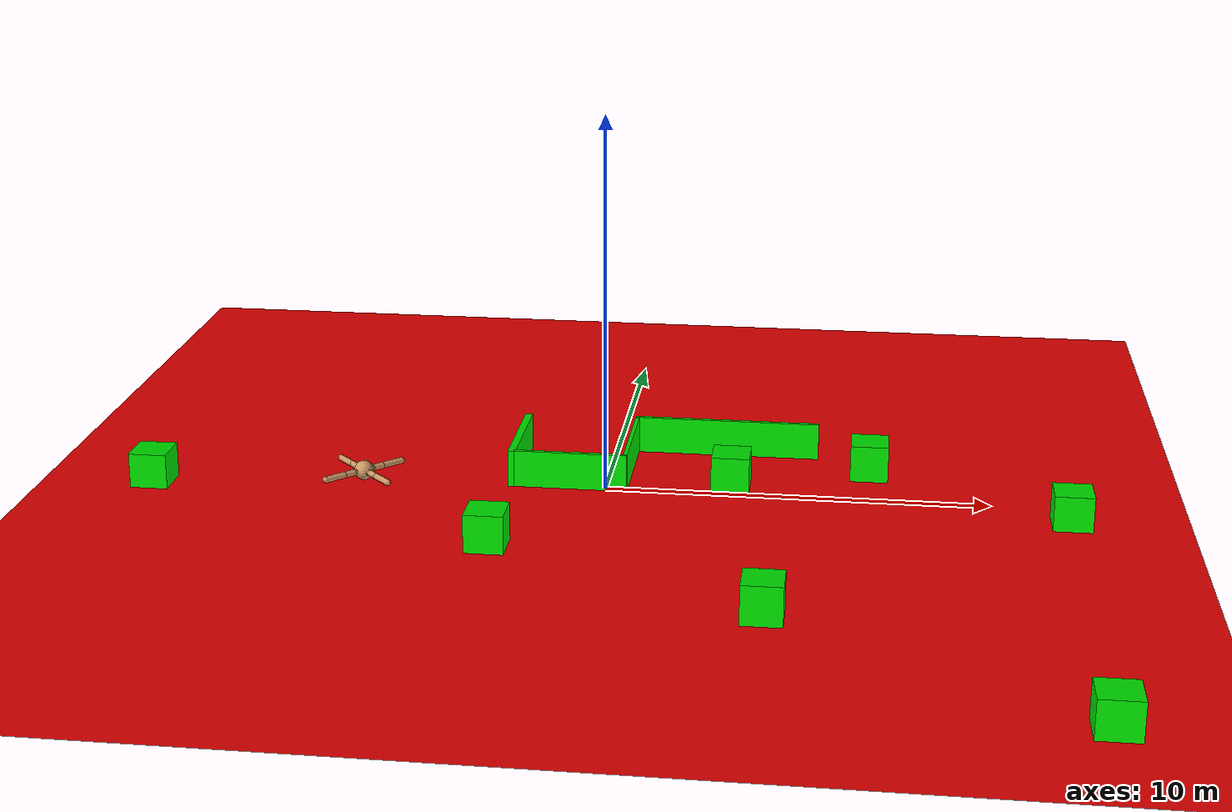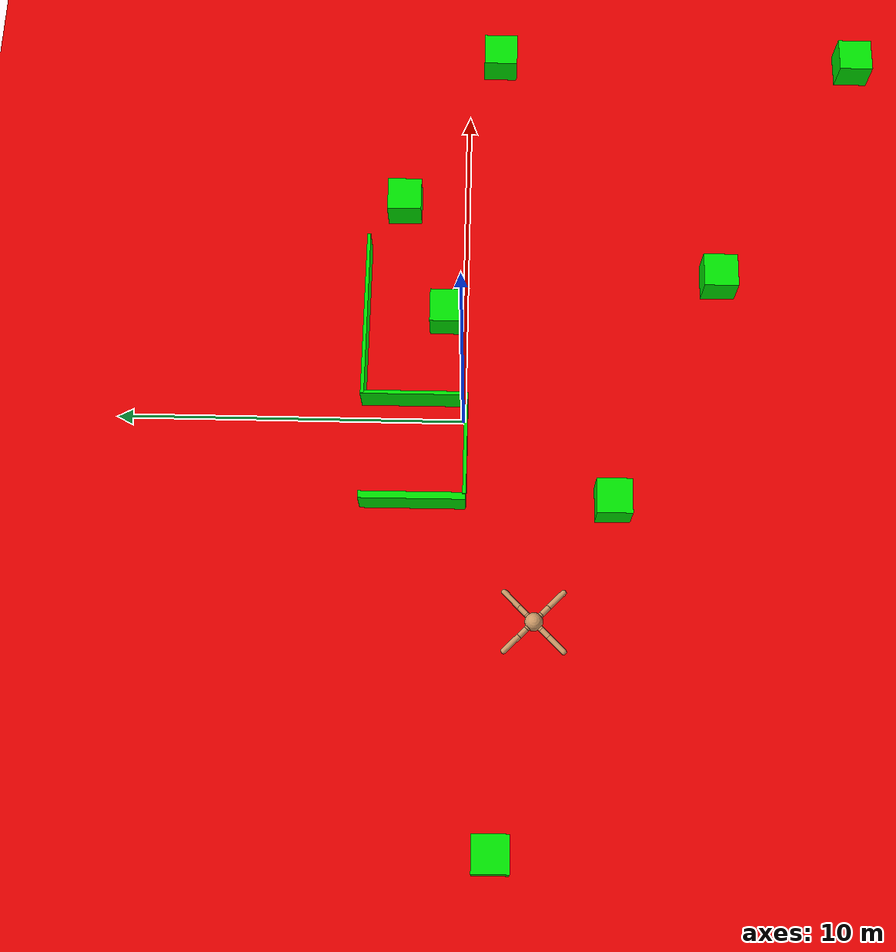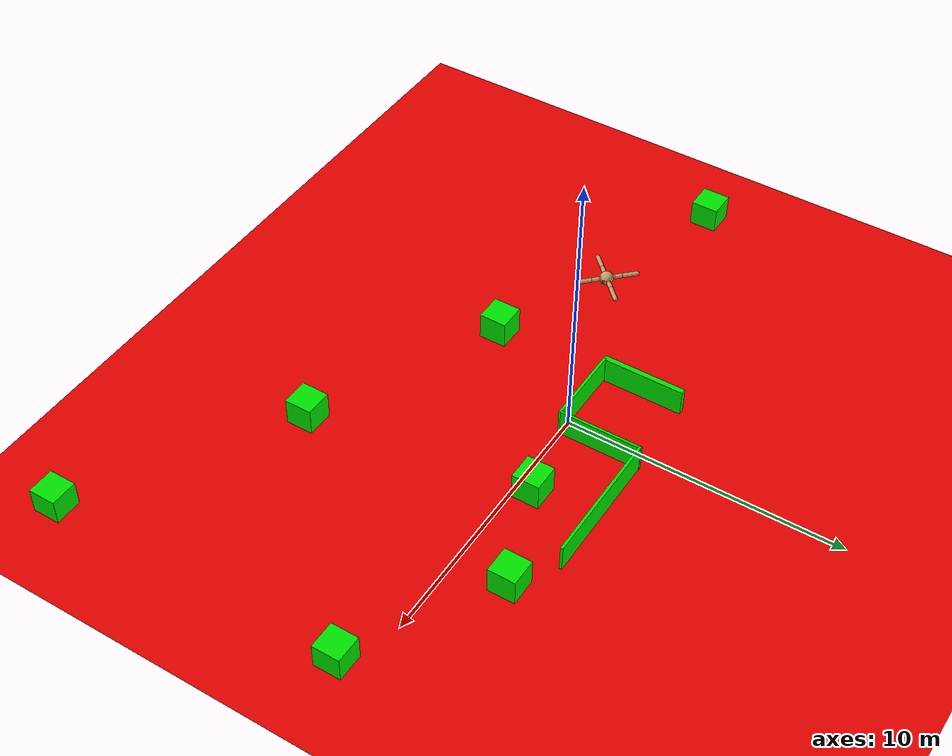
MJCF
<mujoco>
  <compiler angle="degree" coordinate="local" inertiafromgeom="true"/>
  <option integrator="RK4" timestep="0.01"/>
  <custom>
    <numeric data="0.0 0.0 0.55 1.0 0.0 0.0 0.0 0.0 1.0 0.0 -1.0 0.0 -1.0 0.0 1.0" name="init_qpos"/>
  </custom>
  <default>
    <joint armature="1" damping="1" limited="true"/>
    <geom conaffinity="0" condim="3" density="5.0" friction="1 0.5 0.5" margin="0.01" rgba="0.8 0.6 0.4 1"/>
  </default>
  <worldbody>
    <light diffuse=".5 .5 .5" pos="0 0 3" dir="0 0 -1" />
    <geom type="plane" conaffinity="1" condim="3" size="15 15 2.220446E-16" rgba=".9 0 0 1" />
    <body pos="0.53 1.471 0.5">
      <geom type="box" conaffinity="1" condim="3" size="0.05 1.5 0.5" euler="0 0 0" rgba="0 .9 0 1" />
    </body>
    <body pos="-0.934 -0.053 0.488">
      <geom type="box" conaffinity="1" condim="3" size="1.5 0.05 0.5" euler="0 0 0" rgba="0 .9 0 1" />
    </body>
    <body pos="11.99853 -0.9101392 0.4068615" name="target">
      <geom type="box" conaffinity="1" condim="3" size="0.5 0.5 0.5" euler="0 0 0" rgba="0 .9 0 1" name="test_target1"/>
    </body>
    <body pos="-11.99853 -0.9101392 0.4068615" name="target_2">
      <geom type="box" conaffinity="1" condim="3" size="0.5 0.5 0.5" euler="0 0 0" rgba="0 .9 0 1" />
    </body>
    <body pos="11.99853 -11.9101392 0.4068615" name="target_3">
      <geom type="box" conaffinity="1" condim="3" size="0.5 0.5 0.5" euler="0 0 0" rgba="0 .9 0 1" />
    </body>
    <body pos="4.537241 -7.448047 0.4842241">
      <geom type="box" conaffinity="1" condim="3" size="0.5 0.5 0.5" euler="0 0 0" rgba="0 .9 0 1" />
    </body>
    <body pos="6.884696 1.914194 0.4615817">
      <geom type="box" conaffinity="1" condim="3" size="0.5 0.5 0.5" euler="0 0 0" rgba="0 .9 0 1" />
    </body>
    <body pos="-2.420449 -4.230092 0.5146427">
      <geom type="box" conaffinity="1" condim="3" size="0.5 0.5 0.5" euler="0 0 0" rgba="0 .9 0 1" />
    </body>
    <body pos="2.995737 2.91128 0.5115795">
      <geom type="box" conaffinity="1" condim="3" size="2.5 0.05 0.5" euler="0 0 0" rgba="0 .9 0 1" />
    </body>
    <body pos="-2.492513 1.410663 0.4606638">
      <geom type="box" conaffinity="1" condim="3" size="0.1 1.5 0.5" euler="0 0 0" rgba="0 .9 0 1" />
    </body>
    <body pos="3.271456 0.5601169 0.4751832">
      <geom type="box" conaffinity="1" condim="3" size="0.5 0.5 0.5" euler="0 0 0" rgba="0 .9 0 1" />
    </body>
    <body name="torso" pos="-6 -2 1" euler="0 0 0">
      <camera name="track" mode="trackcom" pos="0 -3 0.3" xyaxes="1 0 0 0 0 1"/>
      <site name="box_range" type="box" pos="0.2 0 0" size=".05 .05 .05" rgba="0 .9 0 1" euler="0 90 0"/>
      <site name="box_sensor_top" type="box" pos="0 0 -0.2" size=".05 .05 .05" rgba="0 .9 0 1" euler="0 0 0"/>
      <geom name="torso_geom" pos="0 0 0" size="0.25" type="sphere"/>
      <joint armature="0" damping="0" limited="false" margin="0.01" name="root" pos="0 0 0" type="free"/>
      <body name="front_left_leg" pos="0 0 0">
        <geom fromto="0.0 0.0 0.0 0.2 0.2 0.0" name="aux_1_geom" size="0.08" type="capsule"/>
        <body name="aux_1" pos="0.2 0.2 0">
          <joint axis="0 0 1" name="hip_1" pos="0.0 0.0 0.0" range="-30 30" type="hinge"/>
          <geom fromto="0.0 0.0 0.0 0.2 0.2 0.0" name="left_leg_geom" size="0.08" type="capsule"/>
          <body pos="0.2 0.2 0">
            <joint axis="-1 1 0" name="ankle_1" pos="0.0 0.0 0.0" range="30 70" type="hinge"/>
            <geom fromto="0.0 0.0 0.0 0.4 0.4 0.0" name="left_ankle_geom" size="0.08" type="capsule"/>
          </body>
        </body>
      </body>
      <body name="front_right_leg" pos="0 0 0">
        <geom fromto="0.0 0.0 0.0 -0.2 0.2 0.0" name="aux_2_geom" size="0.08" type="capsule"/>
        <body name="aux_2" pos="-0.2 0.2 0">
          <joint axis="0 0 1" name="hip_2" pos="0.0 0.0 0.0" range="-30 30" type="hinge"/>
          <geom fromto="0.0 0.0 0.0 -0.2 0.2 0.0" name="right_leg_geom" size="0.08" type="capsule"/>
          <body pos="-0.2 0.2 0">
            <joint axis="1 1 0" name="ankle_2" pos="0.0 0.0 0.0" range="-70 -30" type="hinge"/>
            <geom fromto="0.0 0.0 0.0 -0.4 0.4 0.0" name="right_ankle_geom" size="0.08" type="capsule"/>
          </body>
        </body>
      </body>
      <body name="back_leg" pos="0 0 0">
        <geom fromto="0.0 0.0 0.0 -0.2 -0.2 0.0" name="aux_3_geom" size="0.08" type="capsule"/>
        <body name="aux_3" pos="-0.2 -0.2 0">
          <joint axis="0 0 1" name="hip_3" pos="0.0 0.0 0.0" range="-30 30" type="hinge"/>
          <geom fromto="0.0 0.0 0.0 -0.2 -0.2 0.0" name="back_leg_geom" size="0.08" type="capsule"/>
          <body pos="-0.2 -0.2 0">
            <joint axis="-1 1 0" name="ankle_3" pos="0.0 0.0 0.0" range="-70 -30" type="hinge"/>
            <geom fromto="0.0 0.0 0.0 -0.4 -0.4 0.0" name="third_ankle_geom" size="0.08" type="capsule"/>
          </body>
        </body>
      </body>
      <body name="right_back_leg" pos="0 0 0">
        <geom fromto="0.0 0.0 0.0 0.2 -0.2 0.0" name="aux_4_geom" size="0.08" type="capsule"/>
        <body name="aux_4" pos="0.2 -0.2 0">
          <joint axis="0 0 1" name="hip_4" pos="0.0 0.0 0.0" range="-30 30" type="hinge"/>
          <geom fromto="0.0 0.0 0.0 0.2 -0.2 0.0" name="rightback_leg_geom" size="0.08" type="capsule"/>
          <body pos="0.2 -0.2 0">
            <joint axis="1 1 0" name="ankle_4" pos="0.0 0.0 0.0" range="30 70" type="hinge"/>
            <geom fromto="0.0 0.0 0.0 0.4 -0.4 0.0" name="fourth_ankle_geom" size="0.08" type="capsule"/>
          </body>
        </body>
      </body>
    </body>
  </worldbody>

  <actuator>
    <motor ctrllimited="true" ctrlrange="-1.0 1.0" joint="hip_4" gear="150"/>
    <motor ctrllimited="true" ctrlrange="-1.0 1.0" joint="ankle_4" gear="150"/>
    <motor ctrllimited="true" ctrlrange="-1.0 1.0" joint="hip_1" gear="150"/>
    <motor ctrllimited="true" ctrlrange="-1.0 1.0" joint="ankle_1" gear="150"/>
    <motor ctrllimited="true" ctrlrange="-1.0 1.0" joint="hip_2" gear="150"/>
    <motor ctrllimited="true" ctrlrange="-1.0 1.0" joint="ankle_2" gear="150"/>
    <motor ctrllimited="true" ctrlrange="-1.0 1.0" joint="hip_3" gear="150"/>
    <motor ctrllimited="true" ctrlrange="-1.0 1.0" joint="ankle_3" gear="150"/>
  </actuator>

  <sensor>
        <rangefinder name="box1" site="box_range" cutoff="20"/>
        <framexaxis name="yAxis" objtype="site" objname="box_range"/>
        <rangefinder name="touch_top1" site="box_sensor_top" cutoff="20"/>
    </sensor>
</mujoco>
